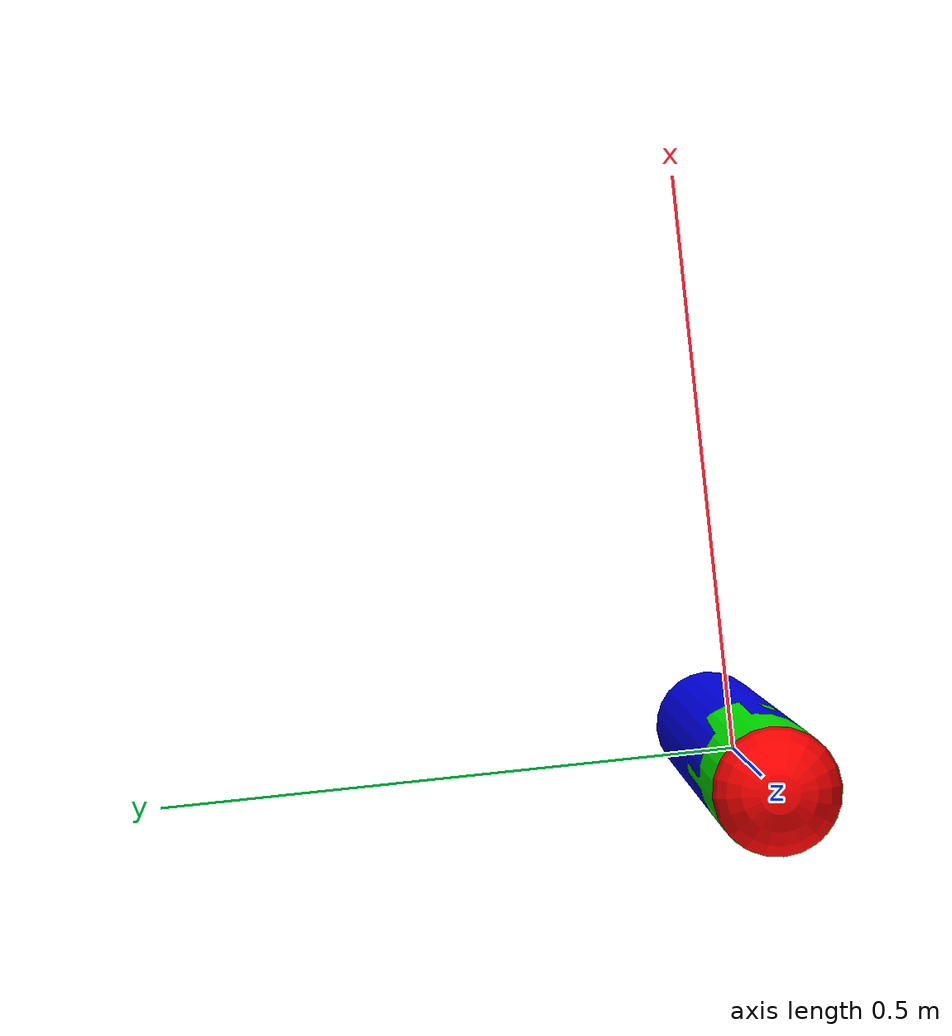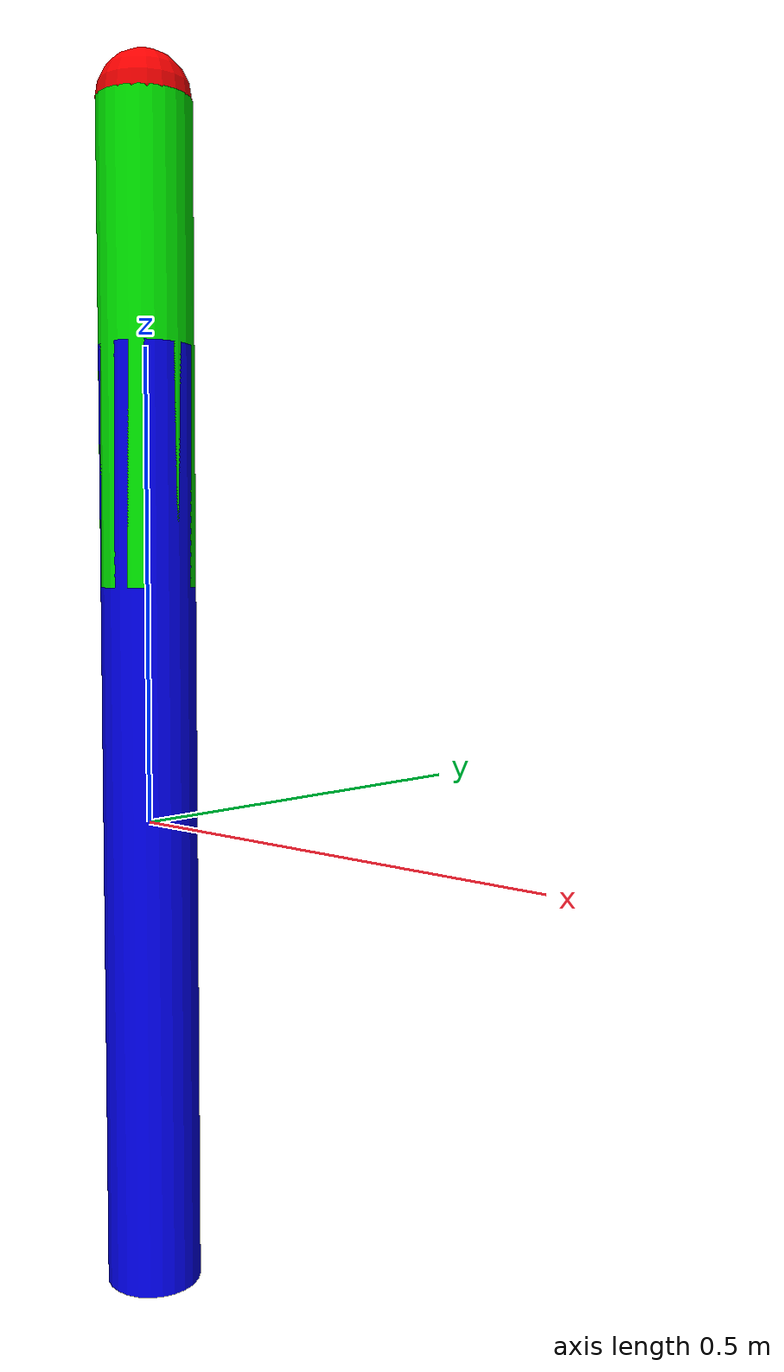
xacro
<?xml version="1.0"?>
<robot xmlns:xacro="http://www.ros.org/wiki/xacro" name="simple_robot">

    <!-- Parameters -->
    <xacro:property name="base_length" value="1.0" />
    <xacro:property name="arm_length" value="0.5" />
    <xacro:property name="link_radius" value="0.05" />

    <!-- Base link -->
    <link name="base_link">
        <visual>
            <geometry>
                <cylinder length="${base_length}" radius="${link_radius}" />
            </geometry>
            <material name="blue">
                <color rgba="0 0 1 1"/>
            </material>
        </visual>
        <collision>
            <geometry>
                <cylinder length="${base_length}" radius="${link_radius}" />
            </geometry>
        </collision>
    </link>

    <!-- Joint 1 (Revolute) -->
    <joint name="joint1" type="revolute">
        <parent link="base_link" />
        <child link="link1" />
        <origin xyz="0 0 ${base_length / 2}" rpy="0 0 0" />
        <axis xyz="0 0 1" />
        <limit lower="-1.57" upper="1.57" effort="10.0" velocity="1.0" />
    </joint>

    <!-- Link 1 -->
    <link name="link1">
        <visual>
            <geometry>
                <cylinder length="${arm_length}" radius="${link_radius}" />
            </geometry>
            <material name="green">
                <color rgba="0 1 0 1"/>
            </material>
        </visual>
        <collision>
            <geometry>
                <cylinder length="${arm_length}" radius="${link_radius}" />
            </geometry>
        </collision>
    </link>

    <!-- Joint 2 (Fixed) -->
    <joint name="joint2" type="fixed">
        <parent link="link1" />
        <child link="end_effector" />
        <origin xyz="0 0 ${arm_length / 2}" rpy="0 0 0" />
    </joint>

    <!-- End Effector -->
    <link name="end_effector">
        <visual>
            <geometry>
                <sphere radius="0.05" />
            </geometry>
            <material name="red">
                <color rgba="1 0 0 1"/>
            </material>
        </visual>
        <collision>
            <geometry>
                <sphere radius="0.05" />
            </geometry>
        </collision>
    </link>
</robot>
